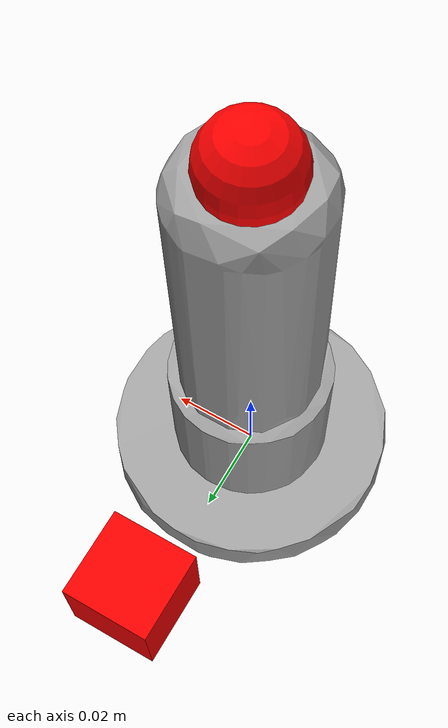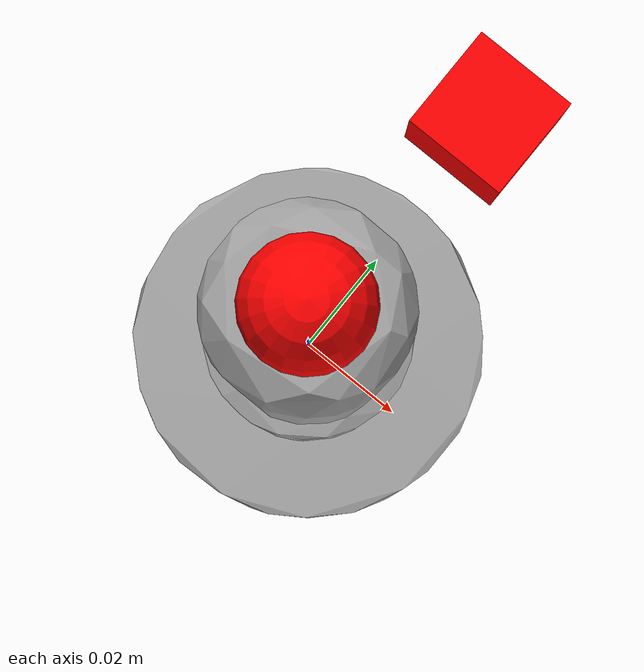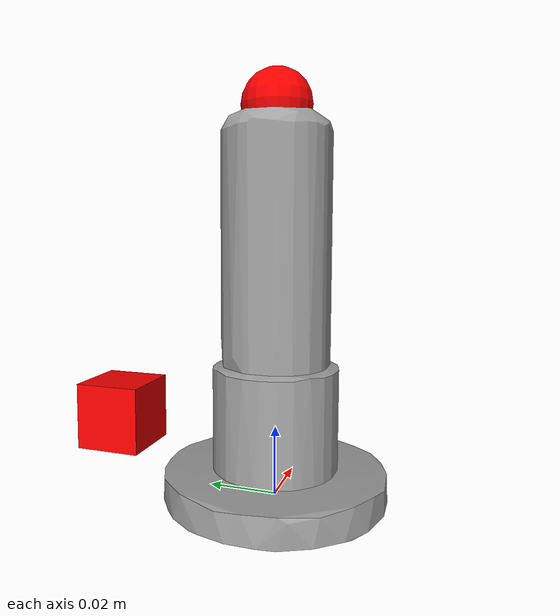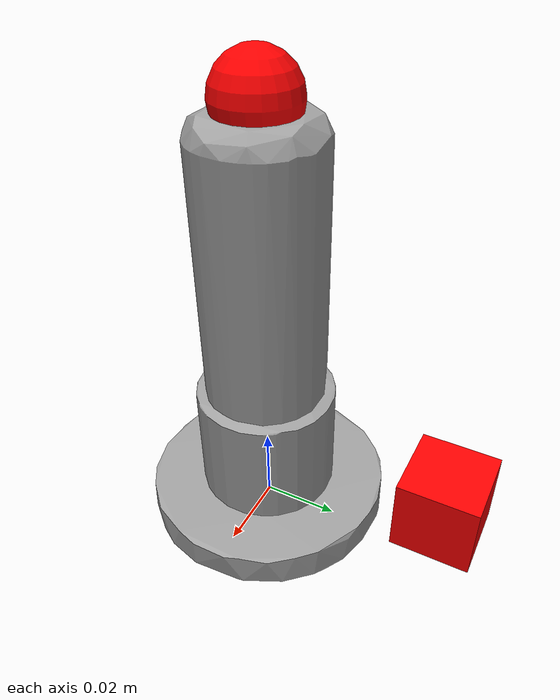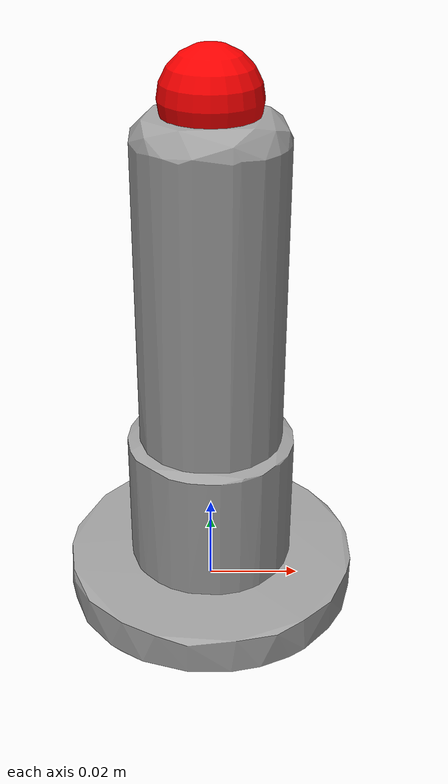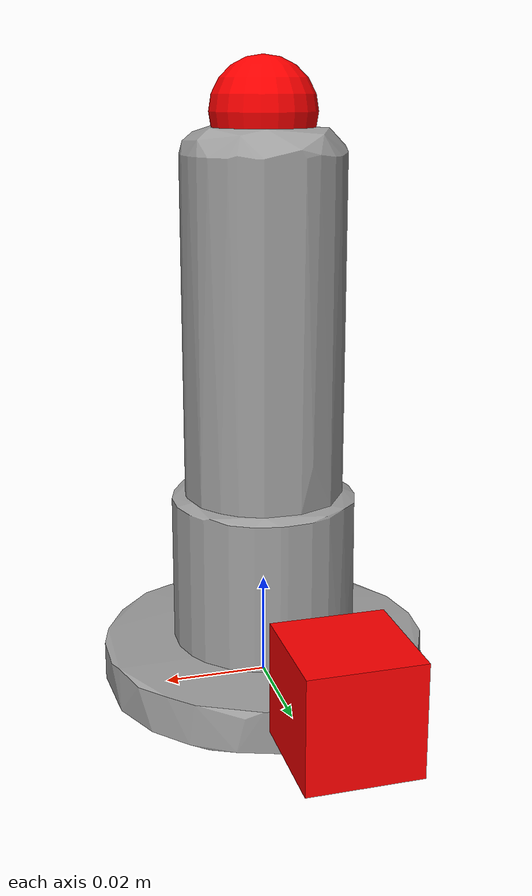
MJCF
<mujoco model="assemble_axle">
    <compiler angle="radian"/>
    <asset>
        <mesh name="assemble_axle1" file="meshes/assemble_axle1.STL"/>
        <mesh name="assemble_axle2" file="meshes/assemble_axle2.STL"/>
        <mesh name="assemble_axle3" file="meshes/assemble_axle3.STL"/>
    </asset>
    <worldbody>
        <body name="end_effector" pos="0 0 0">
            <inertial pos="0 0 0.0446057965611269" mass="0.829915639192743"/>
            <geom type="mesh" condim="3" contype="2" conaffinity="5" group="1" density="0" rgba="0.627451 0.627451 0.627451 1"
                  mesh="assemble_axle1"/>

            <geom type="mesh" condim="3" contype="2" conaffinity="5" group="1" density="0" rgba="0.627451 0.627451 0.627451 1"
                  mesh="assemble_axle2"/>

            <geom type="mesh" condim="3" contype="2" conaffinity="5" group="1" density="0" rgba="0.627451 0.627451 0.627451 1"
                  mesh="assemble_axle3"/>

            <camera name="ee_cam" pos="0 0.05 0.02" euler="0 3.14 0" fovy="60"/>
            <body name="camera" pos="0 0.05 0.02">
                <geom type="box" size="0.01 0.01 0.01" group="1" rgba="1 0 0 1"/>
            </body>

            <body name="eef" pos="0 0 0">
                <site name="grip_site" pos="0 0 0.111" size="0.01" rgba="1 0 0 1" type="sphere" group="1"/>
            </body>
        </body>
    </worldbody>
</mujoco>
